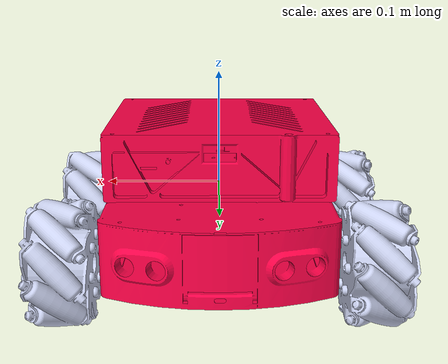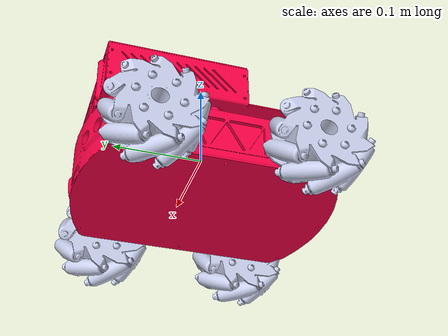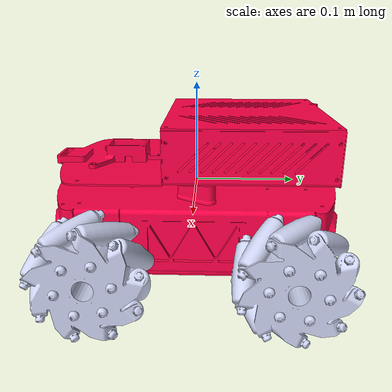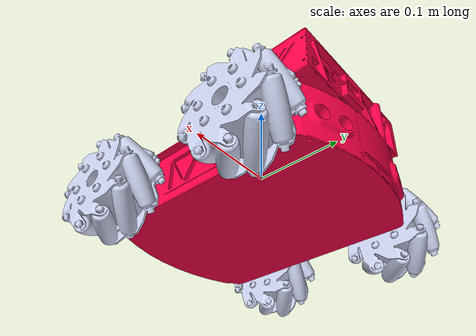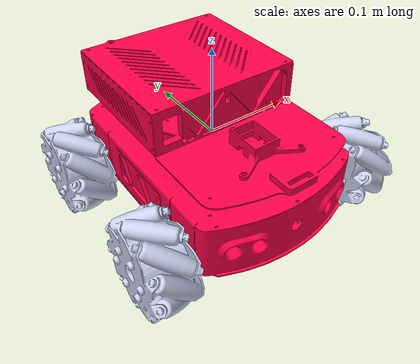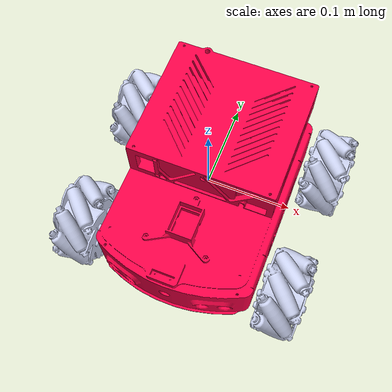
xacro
<?xml version="1.0" encoding="utf-8"?>
<robot xmlns:xacro="http://www.ros.org/wiki/xacro" name="robot_base" >
<xacro:property name="radius" value="0.2" />
<xacro:property name="length" value="0.1" />

  <link name="base_link">
    <inertial>
      <origin
        xyz="-9.5466093050743E-05 0.0097011286361631 -0.00311173658184887"
        rpy="0 0 0" />
      <mass
        value="2.50553121334708" />
      <inertia
        ixx="0.0120355167475054"
        ixy="1.25086940252891E-06"
        ixz="-7.00449395352778E-07"
        iyy="0.008996074825019"
        iyz="-0.000179778730763244"
        izz="0.0202212703189508" />
    </inertial>
    <visual>
      <origin
        xyz="0 0 0"
        rpy="0 0 0" />
      <geometry>
        <mesh
          filename="package://mirtebot_description/meshes/base_link.STL" />
      </geometry>
      <material
        name="base_color">
        <color
          rgba="255 0 71 1" />
      </material>
    </visual>
    <collision>
      <origin
        xyz="0 0 0"
        rpy="0 0 0" />
      <geometry>
        <mesh filename="package://mirtebot_description/meshes/base_link.STL" />
      </geometry>
    </collision>
  </link>

  <link
    name="front_left_wheel_link">
    <inertial>
      <origin
        xyz="-1.49494180923249E-10 2.75265386873169E-10 -0.029064107204112"
        rpy="0 0 0" />
      <mass
        value="0.266614983225976" />
      <inertia
        ixx="8.05457942768499E-05"
        ixy="2.80562638415747E-15"
        ixz="1.08840849250867E-14"
        iyy="8.05457942711438E-05"
        iyz="1.12129517998485E-14"
        izz="9.31956038960016E-05" />
    </inertial>
    <visual>
      <origin
        xyz="0 0 0"
        rpy="0 0 0" />
      <geometry>
        <mesh filename="package://mirtebot_description/meshes/front_left_wheel_link.STL" />
      </geometry>
      <material
        name="wheel_color">
        <color
          rgba="0.792156862745098 0.819607843137255 0.933333333333333 1" />
      </material>
    </visual>
    <collision>
      <origin
        xyz="0 0 0"
        rpy="0 0 0" />
      <geometry>
        <mesh filename="package://mirtebot_description/meshes/front_left_wheel_link.STL" />
      </geometry>
    </collision>
  </link>

  <link
    name="front_right_wheel_link">
    <inertial>
      <origin
        xyz="-1.57737850559059E-10 2.37454618468025E-10 0.0289358927958864"
        rpy="0 0 0" />
      <mass
        value="0.266614983226051" />
      <inertia
        ixx="8.05457942743105E-05"
        ixy="-5.05293777739585E-15"
        ixz="7.7499694178566E-14"
        iyy="8.05457942724649E-05"
        iyz="-1.4707766056978E-15"
        izz="9.31956038947894E-05" />
    </inertial>
    <visual>
      <origin
        xyz="0 0 0"
        rpy="0 0 0" />
      <geometry>
        <mesh filename="package://mirtebot_description/meshes/front_right_wheel_link.STL" />
      </geometry>
      <material
        name="">
        <color
          rgba="0.792156862745098 0.819607843137255 0.933333333333333 1" />
      </material>
    </visual>
    <collision>
      <origin
        xyz="0 0 0"
        rpy="0 0 0" />
      <geometry>
        <mesh filename="package://mirtebot_description/meshes/front_right_wheel_link.STL" />
      </geometry>
    </collision>
  </link>

  <link
    name="rear_right_wheel_link">
    <inertial>
      <origin
        xyz="-1.43943829078452E-10 2.75980814590238E-10 0.0289358927958911"
        rpy="0 0 0" />
      <mass
        value="0.26661498322592" />
      <inertia
        ixx="8.05457942776311E-05"
        ixy="1.1770607004271E-15"
        ixz="9.81908982424025E-15"
        iyy="8.05457942705181E-05"
        iyz="1.92979557722582E-14"
        izz="9.3195603896201E-05" />
    </inertial>
    <visual>
      <origin
        xyz="0 0 0"
        rpy="0 0 0" />
      <geometry>
        <mesh
          filename="package://mirtebot_description/meshes/rear_right_wheel_link.STL" />
      </geometry>
      <material
        name="">
        <color
          rgba="0.792156862745098 0.819607843137255 0.933333333333333 1" />
      </material>
    </visual>
    <collision>
      <origin
        xyz="0 0 0"
        rpy="0 0 0" />
      <geometry>
        <mesh filename="package://mirtebot_description/meshes/rear_right_wheel_link.STL" />
      </geometry>
    </collision>
  </link>

  <link
    name="rear_left_wheel_link">
    <inertial>
      <origin
        xyz="-1.57737461981E-10 2.37452502105384E-10 -0.0290641072041141"
        rpy="0 0 0" />
      <mass
        value="0.266614983226052" />
      <inertia
        ixx="8.05457942743428E-05"
        ixy="-5.04345947871607E-15"
        ixz="7.74983446286353E-14"
        iyy="8.05457942724871E-05"
        iyz="-1.48627657597067E-15"
        izz="9.31956038948212E-05" />
    </inertial>
    <visual>
      <origin
        xyz="0 0 0"
        rpy="0 0 0" />
      <geometry>
        <mesh
          filename="package://mirtebot_description/meshes/rear_left_wheel_link.STL" />
      </geometry>
      <material
        name="">
        <color
          rgba="0.792156862745098 0.819607843137255 0.933333333333333 1" />
      </material>
    </visual>
    <collision>
      <origin
        xyz="0 0 0"
        rpy="0 0 0" />
      <geometry>
        <mesh filename="package://mirtebot_description/meshes/rear_left_wheel_link.STL" />
      </geometry>
    </collision>
  </link>

<!--########################## ROBOT JOINTS ############################################-->
  <!-- Robot Footprint -->

  <joint
    name="rear_right_wheel_joint"
    type="continuous">
    <origin
      xyz="-0.0989999999999999 0.085 -0.0455"
      rpy="1.5707963267949 0.153372062778815 -1.5707963267949" />
    <parent
      link="base_link" />
    <child
      link="rear_right_wheel_link" />
    <axis
      xyz="0 0 1" />
  </joint>

  <joint
    name="front_right_wheel_joint"
    type="continuous">
    <origin
      xyz="-0.0990000000000002 -0.085 -0.0455"
      rpy="1.57079632679489 -0.143157510871617 -1.5707963267949" />
    <parent
      link="base_link" />
    <child
      link="front_right_wheel_link" />
    <axis
      xyz="0 0 1" />
  </joint>

   <joint
    name="front_left_wheel_joint"
    type="continuous">
    <origin
      xyz="0.0989999999999998 -0.085 -0.0455"
      rpy="1.5707963267949 0.13150997320629 -1.5707963267949" />
    <parent
      link="base_link" />
    <child
      link="front_left_wheel_link" />
    <axis
      xyz="0 0 1" />
  </joint>

  <joint
    name="rear_left_wheel_joint"
    type="continuous">
    <origin
      xyz="0.0989999999999995 0.085 -0.0455"
      rpy="1.57079632679489 -0.143157510871617 -1.5707963267949" />
    <parent
      link="base_link" />
    <child
      link="rear_left_wheel_link" />
    <axis
      xyz="0 0 1" />
  </joint>

<!--########################## BASE TRANSMISSIONS ############################################-->
  <transmission name="front_left_wheel_trans">
      <type>transmission_interface/SimpleTransmission</type>
      <joint name="front_left_wheel_joint">
        <hardwareInterface>hardware_interface/VelocityJointInterface</hardwareInterface>
      </joint>
      <actuator name="front_left_wheel_actuator">
        <hardwareInterface>hardware_interface/VelocityJointInterface</hardwareInterface>
        <mechanicalReduction>1</mechanicalReduction>
      </actuator>
  </transmission>

  <transmission name="front_right_wheel_trans">
      <type>transmission_interface/SimpleTransmission</type>
      <joint name="front_right_wheel_joint">
        <hardwareInterface>hardware_interface/VelocityJointInterface</hardwareInterface>
      </joint>
      <actuator name="front_right_wheel_actuator">
        <hardwareInterface>hardware_interface/VelocityJointInterface</hardwareInterface>
        <mechanicalReduction>1</mechanicalReduction>
      </actuator>
  </transmission>

  <transmission name="rear_right_wheel_trans">
      <type>transmission_interface/SimpleTransmission</type>
      <joint name="rear_right_wheel_joint">
        <hardwareInterface>hardware_interface/VelocityJointInterface</hardwareInterface>
      </joint>
      <actuator name="rear_right_wheel_actuator">
        <hardwareInterface>hardware_interface/VelocityJointInterface</hardwareInterface>
        <mechanicalReduction>1</mechanicalReduction>
      </actuator>
    </transmission>

  <transmission name="rear_left_wheel_trans">
      <type>transmission_interface/SimpleTransmission</type>
      <joint name="rear_left_wheel_joint">
        <hardwareInterface>hardware_interface/VelocityJointInterface</hardwareInterface>
      </joint>
      <actuator name="rear_left_wheel_actuator">
        <hardwareInterface>hardware_interface/VelocityJointInterface</hardwareInterface>
        <mechanicalReduction>1</mechanicalReduction>
      </actuator>
    </transmission>

<!--########################## END ############################################-->

  <!-- Could Add this later!! idk what to do with this -->

</robot>
